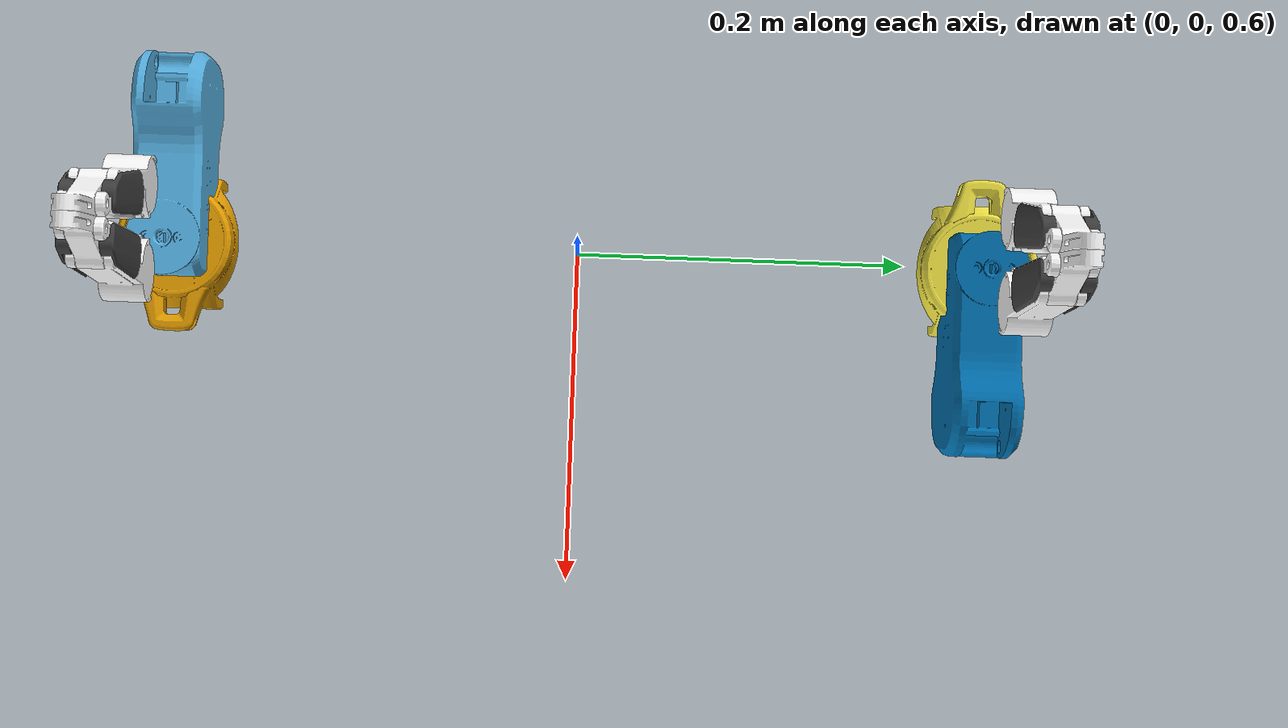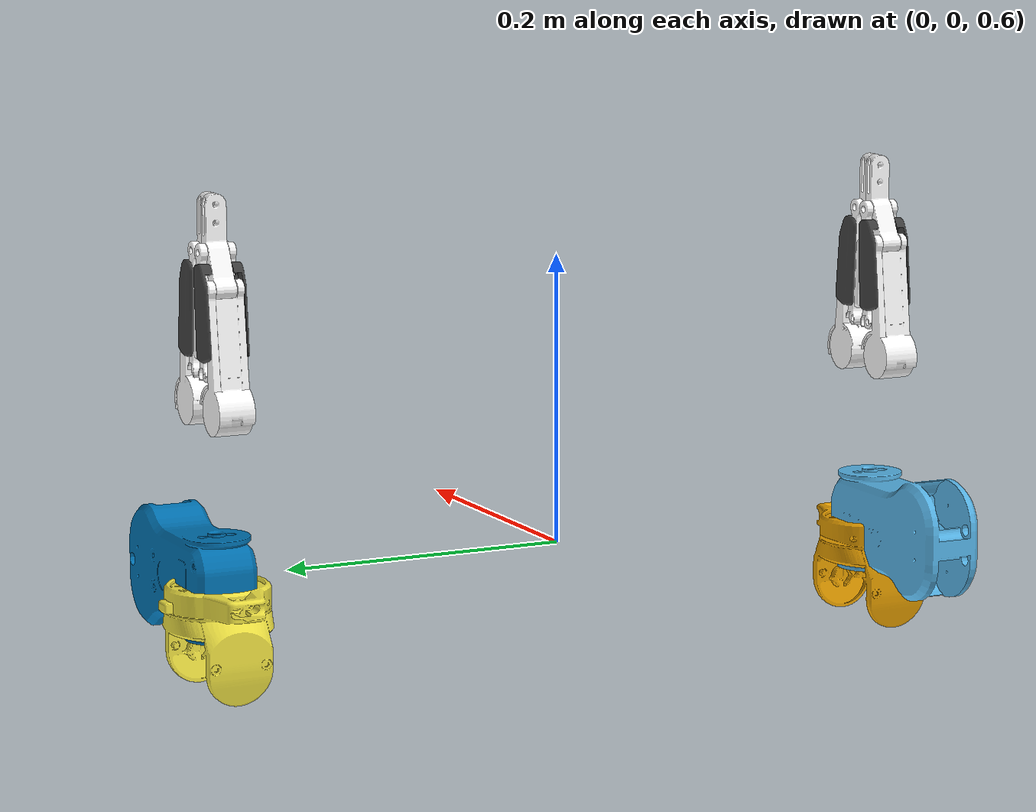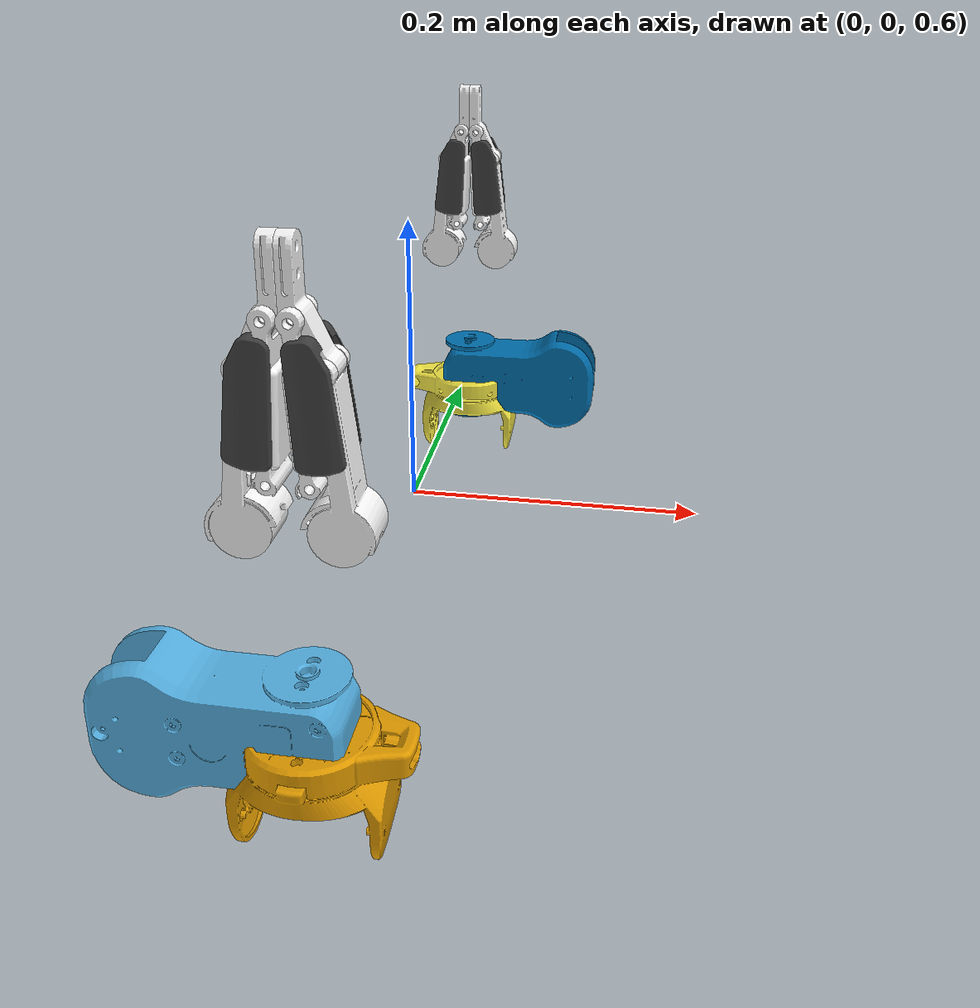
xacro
<?xml version="1.0"?>
<robot name="dual_rg6_realmesh_arm_fixture" xmlns:xacro="http://www.ros.org/wiki/xacro">
  <xacro:arg name="use_standard_fingertips" default="false"/>\n  <xacro:arg name="include_ros2_control" default="false"/>
  <xacro:include filename="$(find onrobot_rg6)/urdf/onrobot_rg6_realmesh_macro.xacro"/>

  <link name="arm_base"/>
  <link name="left_tool0"/>
  <joint name="left_wrist_joint" type="fixed">
    <parent link="arm_base"/><child link="left_tool0"/>
    <origin xyz="0 0.25 0.5" rpy="0 0 0"/>
  </joint>
  <link name="right_tool0"/>
  <joint name="right_wrist_joint" type="fixed">
    <parent link="arm_base"/><child link="right_tool0"/>
    <origin xyz="0 -0.25 0.5" rpy="0 0 0"/>
  </joint>

  <xacro:onrobot_rg6_realmesh parent="left_tool0" prefix="left_gripper_"
                       origin_xyz="0 0 0.08" origin_rpy="0 0 0" include_ros2_control="$(arg include_ros2_control)"/>
  <xacro:onrobot_rg6_realmesh parent="right_tool0" prefix="right_gripper_"
                       origin_xyz="0 0 0.08" origin_rpy="0 0 3.14159265359" include_ros2_control="$(arg include_ros2_control)"/>

  <link name="left_user_finger"/>
  <joint name="left_user_finger_joint" type="fixed">
    <parent link="left_gripper_left_finger_mount"/>
    <child link="left_user_finger"/>
  </joint>
  <link name="right_user_finger"/>
  <joint name="right_user_finger_joint" type="fixed">
    <parent link="right_gripper_right_finger_mount"/>
    <child link="right_user_finger"/>
  </joint>
</robot>

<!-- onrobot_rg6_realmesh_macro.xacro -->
<robot xmlns:xacro="http://www.ros.org/wiki/xacro">

    <!-- ================= Xacro arguments ================= -->

      <xacro:arg name="mesh_path" default="package://onrobot_rg6/meshes"/>
      <xacro:arg name="fingertip_material" default="standard"/>
      <xacro:arg name="use_standard_fingertips" default="true"/>

      <!-- outwards or inwards -->
      <xacro:arg name="fingertip_orientation" default="inwards"/>
      <xacro:arg name="host" default="127.0.0.1"/>
      <xacro:arg name="port" default="502"/>
      <xacro:arg name="transport" default="tcp"/>
      <xacro:arg name="serial_device" default="/dev/ttyUSB0"/>
      <xacro:arg name="baud_rate" default="1000000"/>
      <xacro:arg name="rtu_parity" default="even"/>
      <xacro:arg name="slave_id" default="65"/>
      <xacro:arg name="connect_timeout_ms" default="1000"/>
      <xacro:arg name="read_timeout_ms" default="1000"/>
      <xacro:arg name="write_timeout_ms" default="1000"/>
      <xacro:arg name="backend" default="real"/>
      <xacro:arg name="isaac_joint_commands_topic" default="isaac_joint_commands"/>
      <xacro:arg name="isaac_joint_states_topic" default="isaac_joint_states"/>
      <xacro:arg name="isaac_state_timeout_ms" default="250"/>
      <xacro:arg name="safe_width_min_mm" default="0.0"/>
      <xacro:arg name="safe_width_max_mm" default="160.0"/>
      <xacro:arg name="default_force_n" default="20.0"/>
      <xacro:arg name="realtime_update_rate_hz" default="50"/>

  <xacro:macro name="onrobot_rg6_realmesh" params="parent:='' prefix:='' origin_xyz:='0 0 0' origin_rpy:='0 0 0' backend:='real' host:='127.0.0.1' port:='502' transport:='tcp' serial_device:='/dev/ttyUSB0' baud_rate:='1000000' rtu_parity:='even' slave_id:='65' connect_timeout_ms:='1000' read_timeout_ms:='1000' write_timeout_ms:='1000' safe_width_min_mm:='0.0' safe_width_max_mm:='160.0' default_force_n:='20.0' realtime_update_rate_hz:='50' include_ros2_control:=true">
    <xacro:property name="cad_finger_upper" value="${1.1928 if backend == 'isaac' else asin(151.6 / 160.0) + asin(4.2 / 80.0)}"/>
    <xacro:if value="${parent != ''}">
      <joint name="${prefix}mount_joint" type="fixed"><parent link="${parent}"/><child link="${prefix}base_link"/><origin xyz="${origin_xyz}" rpy="${origin_rpy}"/></joint>
    </xacro:if>
      <!-- ================= Fingertip orientation ================= -->

      <xacro:if value="${'$(arg fingertip_orientation)' == 'inwards'}">
        <xacro:property name="fingertip_rpy_vis" value="${pi / 2} 0 0"/>
        <xacro:property name="fingertip_collision_xyz" value="0 0 0"/>
        <xacro:property name="fingertip_collision_rpy" value="${pi} 0 0"/>
      </xacro:if>

      <xacro:unless value="${'$(arg fingertip_orientation)' == 'inwards'}">
        <xacro:property name="fingertip_rpy_vis" value="${pi / 2} 0 0"/>
        <xacro:property name="fingertip_collision_xyz" value="0 0 -0.0084"/>
        <xacro:property name="fingertip_collision_rpy" value="0 0 0"/>
      </xacro:unless>

      <!-- ================= Fingertip material ================= -->

        <xacro:if value="${'$(arg fingertip_material)' == 'standard'}">
        <xacro:property
          name="fingertip_mesh"
          value="$(arg mesh_path)/fingertip_standard"/>
      </xacro:if>

      <xacro:if value="${'$(arg fingertip_material)' == 'x'}">
        <xacro:property
          name="fingertip_mesh"
          value="$(arg mesh_path)/fingertip_x"/>
      </xacro:if>

      <xacro:if value="${'$(arg fingertip_material)' == '50_standard'}">
        <xacro:property
          name="fingertip_mesh"
          value="$(arg mesh_path)/fingertip_50_standard"/>
      </xacro:if>

      <xacro:if value="${'$(arg fingertip_material)' == '50_x'}">
        <xacro:property
          name="fingertip_mesh"
          value="$(arg mesh_path)/fingertip_50_x"/>
      </xacro:if>

      <xacro:if value="${'$(arg fingertip_material)' == '100_standard'}">
        <xacro:property
          name="fingertip_mesh"
          value="$(arg mesh_path)/fingertip_100_standard"/>
      </xacro:if>

      <xacro:if value="${'$(arg fingertip_material)' == '100_x'}">
        <xacro:property
          name="fingertip_mesh"
          value="$(arg mesh_path)/fingertip_100_x"/>
      </xacro:if>

      <!-- ================= Fingertip inertial values ================= -->

      <!-- ================= Standard and x fingertip inertia ================= -->

      <xacro:if value="${'$(arg fingertip_material)' == 'standard' or '$(arg fingertip_material)' == 'x'}">

        <xacro:property
            name="fingertip_inertial_origin_xyz"
            value="-0.000415245269094811 9.99885104498482E-05 -0.000165694664188377"/>
        <xacro:property name="fingertip_mass" value="0.00794964440363267"/>
        <xacro:property name="fingertip_ixx" value="5.15212191011275E-07"/>
        <xacro:property name="fingertip_ixy" value="-8.74258433074447E-13"/>
        <xacro:property name="fingertip_ixz" value="-1.51311624243258E-08"/>
        <xacro:property name="fingertip_iyy" value="8.83850409371737E-07"/>
        <xacro:property name="fingertip_iyz" value="4.99311599525026E-13"/>
        <xacro:property name="fingertip_izz" value="1.27369503224217E-06"/>

      </xacro:if>

      <!-- ================= 50 mm standard and x extension inertia ================= -->

      <xacro:if value="${'$(arg fingertip_material)' == '50_standard' or '$(arg fingertip_material)' == '50_x'}">

        <xacro:property
            name="fingertip_inertial_origin_xyz"
            value="0.030851 -1.3178E-08 0.00066842"/>
        <xacro:property name="fingertip_mass" value="0.030186"/>
        <xacro:property name="fingertip_ixx" value="1.2853E-06"/>
        <xacro:property name="fingertip_ixy" value="-1.0138E-11"/>
        <xacro:property name="fingertip_ixz" value="7.33E-09"/>
        <xacro:property name="fingertip_iyy" value="1.0583E-05"/>
        <xacro:property name="fingertip_iyz" value="-8.1418E-13"/>
        <xacro:property name="fingertip_izz" value="1.1379E-05"/>

      </xacro:if>

      <!-- ================= 100 mm standard and x extension inertia ================= -->

      <xacro:if value="${'$(arg fingertip_material)' == '100_standard' or '$(arg fingertip_material)' == '100_x'}">

          <xacro:property
            name="fingertip_inertial_origin_xyz"
            value="0.057465 -2.6865E-08 0.0010303"/>
        <xacro:property name="fingertip_mass" value="0.046499"/>
        <xacro:property name="fingertip_ixx" value="1.6626E-06"/>
        <xacro:property name="fingertip_ixy" value="-6.5184E-11"/>
        <xacro:property name="fingertip_ixz" value="9.5224E-08"/>
        <xacro:property name="fingertip_iyy" value="4.7491E-05"/>
        <xacro:property name="fingertip_iyz" value="-4.4294E-12"/>
        <xacro:property name="fingertip_izz" value="4.8472E-05" />

      </xacro:if>

      <!-- ================= Fingertip inertial macro ================= -->

      <xacro:macro name="fingertip_inertial">
        <inertial>
          <origin
            xyz="${fingertip_inertial_origin_xyz}"
            rpy="0 0 0"/>
          <mass value="${fingertip_mass}"/>
          <inertia
            ixx="${fingertip_ixx}"
            ixy="${fingertip_ixy}"
            ixz="${fingertip_ixz}"
            iyy="${fingertip_iyy}"
            iyz="${fingertip_iyz}"
            izz="${fingertip_izz}"/>
        </inertial>
      </xacro:macro>

      <!-- ================= Shared materials ================= -->

      <material name="${prefix}base_grey">
        <color
          rgba="0.752941176470588 0.752941176470588 0.752941176470588 1"/>
      </material>

      <material name="${prefix}body_white">
        <color rgba="1 1 1 1"/>
      </material>

      <material name="${prefix}cover_grey">
        <color
          rgba="0.25 0.25 0.25 1"/>
      </material>

      <!-- ================= Base link ================= -->

      <link name="${prefix}base_link">
        <inertial>
          <origin
            xyz="-0.00121788599047724 -0.000550668033101437 0.0187282967117692"
            rpy="0 0 0"/>
          <mass value="0.204758708246786"/>
          <inertia
            ixx="6.64001336616449E-05"
            ixy="-1.76622602816932E-08"
            ixz="3.54902398565887E-07"
            iyy="6.08703694320358E-05"
            iyz="-1.99495160489733E-07"
            izz="0.000104892887141359"/>
        </inertial>

        <visual>
          <origin
            xyz="0 0 0.01384"
            rpy="${pi} 0 0"/>
          <geometry>
            <mesh filename="$(arg mesh_path)/base_link.dae"/>
          </geometry>
        </visual>

        <collision>
          <origin xyz="0 0 0" rpy="0 0 0"/>
          <geometry>
            <mesh filename="$(arg mesh_path)/base_link.STL"/>
          </geometry>
        </collision>
      </link>

      <!-- ================= Body link ================= -->

      <link name="${prefix}body_link">
        <inertial>
          <origin
            xyz="0.0434153623779559 5.3786957841064E-05 -5.29481917390598E-05"
            rpy="0 0 0"/>
          <mass value="0.60552714704761"/>
          <inertia
            ixx="0.000247806198136595"
            ixy="-3.09068060110115E-06"
            ixz="6.82132501556445E-07"
            iyy="0.00101875038940284"
            iyz="5.58944896976989E-08"
            izz="0.000814988330532685"/>
        </inertial>

        <visual>
          <origin
            xyz="-0.0365 0 0"
            rpy="${pi} ${pi/2} 0"/>
          <geometry>
            <mesh filename="$(arg mesh_path)/body_link.dae"/>
          </geometry>
        </visual>

        <collision>
          <origin
            xyz="0 0 0"
            rpy="${pi} 0 0"/>
          <geometry>
            <mesh filename="$(arg mesh_path)/body_link.STL"/>
          </geometry>
        </collision>
      </link>

      <joint name="${prefix}body_joint" type="fixed">
        <origin
          xyz="0 0 0.0503000000000003"
          rpy="0 -1.5707963267949 0"/>
        <parent link="${prefix}base_link"/>
        <child link="${prefix}body_link"/>
      </joint>

      <!-- ================= Right outer proximal finger ================= -->

      <link name="${prefix}right_outer_proximal_finger_link">
        <inertial>
          <origin
            xyz="0.0177338821259218 -8.32951273863174E-05 -6.63580284241195E-08"
            rpy="0 0 0"/>
          <mass value="0.0848117981062213"/>
          <inertia
            ixx="8.71821520908564E-06"
            ixy="1.34526866604961E-06"
            ixz="3.84850856626284E-11"
            iyy="5.52144884000519E-05"
            iyz="-4.03714649653644E-11"
            izz="5.4966795562473E-05"/>
        </inertial>

        <visual>
          <origin xyz="0 0 0" rpy="0 0 0"/>
          <geometry>
            <mesh
              filename="$(arg mesh_path)/outer_proximal_finger_link.STL"/>
          </geometry>
          <material name="${prefix}body_white"/>
        </visual>

        <collision>
          <origin xyz="0 0 0" rpy="0 0 0"/>
          <geometry>
            <mesh
              filename="$(arg mesh_path)/outer_proximal_finger_link.STL"/>
          </geometry>
        </collision>
      </link>

      <joint name="${prefix}finger_joint" type="revolute">
        <origin
          xyz="0.0849999999999914 0 -0.0238499999999955"
          rpy="-1.5707963267949 0 0"/>
        <parent link="${prefix}body_link"/>
        <child link="${prefix}right_outer_proximal_finger_link"/>
        <axis xyz="0 0 1"/>
        <limit
          lower="0"
          upper="${cad_finger_upper}"
          effort="16.17"
          velocity="1.34"/>
      </joint>

      <!-- ================= Right finger base ================= -->

      <link name="${prefix}right_finger_base_link">
        <inertial>
          <origin
            xyz="0.0245303578322192 -0.0101016281440233 -9.99975309271899E-05"
            rpy="0 0 0"/>
          <mass value="0.0219132001177097"/>
          <inertia
            ixx="1.29440989381929E-06"
            ixy="2.07037163398328E-06"
            ixz="-4.84504967490224E-13"
            iyy="7.54766158511745E-06"
            iyz="4.36721422019022E-13"
            izz="8.16537121487209E-06"/>
        </inertial>

        <visual>
          <origin xyz="0 0 0" rpy="0 0 0"/>
          <geometry>
            <mesh filename="$(arg mesh_path)/finger_base_link.STL"/>
          </geometry>
          <material name="${prefix}body_white"/>
        </visual>

        <collision>
          <origin xyz="0 0 0" rpy="0 0 0"/>
          <geometry>
            <mesh filename="$(arg mesh_path)/finger_base_link.STL"/>
          </geometry>
        </collision>
      </link>

      <joint name="${prefix}right_finger_base_link" type="continuous">
        <origin
          xyz="0.0798896739261193 -0.00419999999758666 0"
          rpy="0 0 0"/>
        <parent link="${prefix}right_outer_proximal_finger_link"/>
        <child link="${prefix}right_finger_base_link"/>
        <axis xyz="0 0 1"/>
        <mimic
          joint="${prefix}finger_joint"
          multiplier="-1"
          offset="0"/>
      </joint>

      <!-- ================= Right finger cover ================= -->

      <link name="${prefix}right_finger_cover_link">
        <inertial>
          <origin
            xyz="-0.0272052614455263 0.00166203526226322 -9.99202916528356E-05"
            rpy="0 0 0"/>
          <mass value="0.00654133884855527"/>
          <inertia
            ixx="2.20130240213327E-07"
            ixy="1.57708709316053E-07"
            ixz="-7.28649779330084E-13"
            iyy="2.11303877150424E-06"
            iyz="-1.81532285162983E-13"
            izz="2.307595228608E-06"/>
        </inertial>

        <visual>
          <origin xyz="0 0 0" rpy="0 0 0"/>
          <geometry>
            <mesh filename="$(arg mesh_path)/finger_cover_link.STL"/>
          </geometry>
          <material name="${prefix}cover_grey"/>
        </visual>

        <collision>
          <origin xyz="0 0 0" rpy="0 0 0"/>
          <geometry>
            <mesh filename="$(arg mesh_path)/finger_cover_link.STL"/>
          </geometry>
        </collision>
      </link>

      <joint name="${prefix}right_finger_cover_joint" type="continuous">
        <origin
          xyz="0.01155 -0.00664999999999995 0"
          rpy="0 0 0"/>
        <parent link="${prefix}right_finger_base_link"/>
        <child link="${prefix}right_finger_cover_link"/>
        <axis xyz="0 0 1"/>
        <mimic
          joint="${prefix}finger_joint"
          multiplier="1"
          offset="0"/>
      </joint>

      <!-- ================= Right fingertip ================= -->

      <xacro:if value="$(arg use_standard_fingertips)">
      <link name="${prefix}right_finger_tip_link">
        <xacro:fingertip_inertial/>
        <visual>
          <origin
            xyz="${fingertip_collision_xyz}"
            rpy="${fingertip_collision_rpy}"/>
          <geometry>
                <mesh filename="${fingertip_mesh}_link.dae"/>
          </geometry>
        </visual>

        <collision>
          <origin
            xyz="${fingertip_collision_xyz}"
            rpy="${fingertip_collision_rpy}"/>
          <geometry>
                <mesh filename="${fingertip_mesh}_link.STL"/>
          </geometry>
        </collision>
      </link>
      </xacro:if>

      <link name="${prefix}right_finger_mount"/>

      <joint name="${prefix}right_finger_mount_joint" type="fixed">
        <origin
          xyz="0.0479 -0.0196 0"
          rpy="0 0 0"/>
        <parent link="${prefix}right_finger_base_link"/>
        <child link="${prefix}right_finger_mount"/>
      </joint>

      <xacro:if value="$(arg use_standard_fingertips)">
      <joint name="${prefix}right_finger_tip_joint" type="fixed">
        <origin xyz="0 0 0" rpy="${fingertip_rpy_vis}"/>
        <parent link="${prefix}right_finger_mount"/>
        <child link="${prefix}right_finger_tip_link"/>
      </joint>
      </xacro:if>

      <!-- ================= Right inner proximal finger ================= -->

      <link name="${prefix}right_inner_proximal_finger_link">
        <inertial>
          <origin
            xyz="0.0388879789845956 -0.00254047815772547 -0.000105026480050108"
            rpy="0 0 0"/>
          <mass value="0.0209379492759949"/>
          <inertia
            ixx="1.66325652747798E-06"
            ixy="8.5496814274727E-07"
            ixz="-2.4758818329976E-12"
            iyy="1.76493383239348E-05"
            iyz="2.44875952455023E-13"
            izz="1.63390526801637E-05"/>
        </inertial>

        <visual>
          <origin xyz="0 0 0" rpy="0 0 0"/>
          <geometry>
            <mesh
              filename="$(arg mesh_path)/inner_proximal_finger_link.STL"/>
          </geometry>
          <material name="${prefix}body_white"/>
        </visual>

        <collision>
          <origin xyz="0 0 0" rpy="0 0 0"/>
          <geometry>
            <mesh
              filename="$(arg mesh_path)/inner_proximal_finger_link.STL"/>
          </geometry>
        </collision>
      </link>

      <joint name="${prefix}right_inner_proximal_finger_joint" type="continuous">
        <origin
          xyz="0.1081 0 -0.0105499999999994"
          rpy="-1.5707963267949 0 0"/>
        <parent link="${prefix}body_link"/>
        <child link="${prefix}right_inner_proximal_finger_link"/>
        <axis xyz="0 0 1"/>
        <mimic
          joint="${prefix}finger_joint"
          multiplier="1"
          offset="0"/>
      </joint>

      <!-- ================= Left outer proximal finger ================= -->

      <link name="${prefix}left_outer_proximal_finger_link">
        <inertial>
          <origin
            xyz="0.0177338821257871 -8.32951273467969E-05 -6.63580395243983E-08"
            rpy="0 0 0"/>
          <mass value="0.0848117981059909"/>
          <inertia
            ixx="8.71821520907421E-06"
            ixy="1.34526866599051E-06"
            ixz="3.84851186671045E-11"
            iyy="5.52144883997528E-05"
            iyz="-4.03714700288834E-11"
            izz="5.496679556217E-05"/>
        </inertial>

        <visual>
          <origin xyz="0 0 0" rpy="0 0 0"/>
          <geometry>
            <mesh
              filename="$(arg mesh_path)/outer_proximal_finger_link.STL"/>
          </geometry>
          <material name="${prefix}body_white"/>
        </visual>

        <collision>
          <origin xyz="0 0 0" rpy="0 0 0"/>
          <geometry>
            <mesh
              filename="$(arg mesh_path)/outer_proximal_finger_link.STL"/>
          </geometry>
        </collision>
      </link>

      <joint name="${prefix}left_outer_proximal_finger_joint" type="revolute">
        <origin
          xyz="0.0850000000000254 0 0.0237500000000128"
          rpy="1.5707963267949 0 0"/>
        <parent link="${prefix}body_link"/>
        <child link="${prefix}left_outer_proximal_finger_link"/>
        <axis xyz="0 0 1"/>
        <limit
          lower="0"
          upper="${cad_finger_upper}"
          effort="16.17"
          velocity="1.34"/>

        <mimic
          joint="${prefix}finger_joint"
          multiplier="1"
          offset="0"/>
      </joint>

      <!-- ================= Left finger base ================= -->

      <link name="${prefix}left_finger_base_link">
        <inertial>
          <origin
            xyz="0.0245303578322203 -0.0101016281440251 2.46907248070556E-09"
            rpy="0 0 0"/>
          <mass value="0.0219132001177097"/>
          <inertia
            ixx="1.29440989381929E-06"
            ixy="2.07037163398328E-06"
            ixz="-4.84504982625829E-13"
            iyy="7.54766158511746E-06"
            iyz="4.36721426440262E-13"
            izz="8.16537121487209E-06"/>
        </inertial>

        <visual>
          <origin xyz="0 0 0" rpy="0 0 0"/>
          <geometry>
            <mesh filename="$(arg mesh_path)/finger_base_link.STL"/>
          </geometry>
          <material name="${prefix}body_white"/>
        </visual>

        <collision>
          <origin xyz="0 0 0" rpy="0 0 0"/>
          <geometry>
            <mesh filename="$(arg mesh_path)/finger_base_link.STL"/>
          </geometry>
        </collision>
      </link>

      <joint name="${prefix}left_finger_base_joint" type="continuous">
        <origin
          xyz="0.0798896739260845 -0.00419999999760181 0"
          rpy="0 0 0"/>
        <parent link="${prefix}left_outer_proximal_finger_link"/>
        <child link="${prefix}left_finger_base_link"/>
        <axis xyz="0 0 1"/>
        <mimic
          joint="${prefix}finger_joint"
          multiplier="-1"
          offset="0"/>
      </joint>

      <!-- ================= Left finger cover ================= -->

      <link name="${prefix}left_finger_cover_link">
        <inertial>
          <origin
            xyz="-0.0272052614455309 0.00166203526231937 7.9708347079959E-08"
            rpy="0 0 0"/>
          <mass value="0.0065413388485553"/>
          <inertia
            ixx="2.20130241120385E-07"
            ixy="1.5770870931553E-07"
            ixz="-7.28647952226547E-13"
            iyy="2.11303877241158E-06"
            iyz="-1.81531566232666E-13"
            izz="2.3075952286081E-06"/>
        </inertial>

        <visual>
          <origin xyz="0 0 0" rpy="0 0 0"/>

          <geometry>
            <mesh filename="$(arg mesh_path)/finger_cover_link.STL"/>
          </geometry>

          <material name="${prefix}cover_grey"/>
        </visual>

        <collision>
          <origin xyz="0 0 0" rpy="0 0 0"/>

          <geometry>
            <mesh filename="$(arg mesh_path)/finger_cover_link.STL"/>
          </geometry>
        </collision>
      </link>

      <joint name="${prefix}left_finger_cover_joint" type="continuous">
        <origin
          xyz="0.01155 -0.00665 0"
          rpy="0 0 0"/>

        <parent link="${prefix}left_finger_base_link"/>
        <child link="${prefix}left_finger_cover_link"/>

        <axis xyz="0 0 1"/>
        <mimic
          joint="${prefix}finger_joint"
          multiplier="1"
          offset="0"/>
      </joint>

      <!-- ================= Left fingertip ================= -->

      <xacro:if value="$(arg use_standard_fingertips)">
      <link name="${prefix}left_finger_tip_link">
        <xacro:fingertip_inertial/>

        <visual>
          <origin
            xyz="${fingertip_collision_xyz}"
            rpy="${fingertip_collision_rpy}"/>
          <geometry>
                <mesh filename="${fingertip_mesh}_link.dae"/>
          </geometry>
        </visual>

        <collision>
          <origin
            xyz="${fingertip_collision_xyz}"
            rpy="${fingertip_collision_rpy}"/>
          <geometry>
                <mesh filename="${fingertip_mesh}_link.STL"/>
          </geometry>
        </collision>
      </link>
      </xacro:if>

      <link name="${prefix}left_finger_mount"/>

      <joint name="${prefix}left_finger_mount_joint" type="fixed">
        <origin
          xyz="0.0479 -0.0196 0"
          rpy="0 0 0"/>
        <parent link="${prefix}left_finger_base_link"/>
        <child link="${prefix}left_finger_mount"/>
      </joint>

      <xacro:if value="$(arg use_standard_fingertips)">
      <joint name="${prefix}left_finger_tip_joint" type="fixed">
        <origin xyz="0 0 0" rpy="${fingertip_rpy_vis}"/>
        <parent link="${prefix}left_finger_mount"/>
        <child link="${prefix}left_finger_tip_link"/>
      </joint>
      </xacro:if>

      <!-- ================= Left inner proximal finger ================= -->

      <link name="${prefix}left_inner_proximal_finger_link">
        <inertial>
          <origin
            xyz="0.0388879789845877 -0.00254047815756097 0.000105017186589876"
            rpy="0 0 0"/>
          <mass value="0.0209379492759949"/>
          <inertia
            ixx="1.66325652747629E-06"
            ixy="8.54968142731476E-07"
            ixz="-2.47588181911418E-12"
            iyy="1.76493383239365E-05"
            iyz="2.44875941899567E-13"
            izz="1.63390526801636E-05"/>
        </inertial>

        <visual>
          <origin xyz="0 0 0" rpy="0 0 0"/>
          <geometry>
            <mesh filename="$(arg mesh_path)/inner_proximal_finger_link.STL"/>
          </geometry>
          <material name="${prefix}body_white"/>
        </visual>

        <collision>
          <origin xyz="0 0 0" rpy="0 0 0"/>
          <geometry>
            <mesh filename="$(arg mesh_path)/inner_proximal_finger_link.STL"/>
          </geometry>
        </collision>
      </link>

      <joint name="${prefix}left_inner_proximal_finger_joint" type="continuous">
        <origin
          xyz="0.1081 0 0.0104500000000006"
          rpy="1.5707963267949 0 0"/>
        <parent link="${prefix}body_link"/>
        <child link="${prefix}left_inner_proximal_finger_link"/>
        <axis xyz="0 0 1"/>
        <mimic
          joint="${prefix}finger_joint"
          multiplier="1"
          offset="0"/>
      </joint>

      <!-- ================= Fingertip friction ================= -->

      <gazebo reference="${prefix}left_finger_tip_link">
        <mu1>0.4</mu1>
        <mu2>0.4</mu2>
      </gazebo>

      <gazebo reference="${prefix}right_finger_tip_link">
        <mu1>0.4</mu1>
        <mu2>0.4</mu2>
      </gazebo>

      <!-- Semantic aperture control joint; visual finger-angle calibration remains
           a separate requirement and is not silently approximated here. -->
      <link name="${prefix}grip_stroke_control_link"/>
      <joint name="${prefix}grip_stroke" type="prismatic">
        <parent link="${prefix}base_link"/><child link="${prefix}grip_stroke_control_link"/>
        <axis xyz="1 0 0"/><limit lower="0" upper="0.160" effort="120" velocity="1"/>
      </joint>

    <xacro:if value="${include_ros2_control}">
        <ros2_control name="${prefix}OnRobotRG6System" type="system">
            <hardware>
              <xacro:if value="${backend == 'real'}"><plugin>onrobot_gripper_hardware/OnRobotRgSystem</plugin></xacro:if>
              <xacro:if value="${backend == 'fake'}"><plugin>onrobot_gripper_hardware/OnRobotParallelGripperFakeSystem</plugin></xacro:if>
              <xacro:if value="${backend == 'isaac'}"><plugin>onrobot_gripper_hardware/OnRobotIsaacSystem</plugin></xacro:if>
              <param name="model">rg6</param>
              <param name="transport">${transport}</param>
              <param name="host">${host}</param>
              <param name="port">${port}</param>
              <param name="serial_device">${serial_device}</param>
              <param name="baud_rate">${baud_rate}</param>
              <param name="rtu_parity">${rtu_parity}</param>
              <param name="slave_id">${slave_id}</param>
              <param name="connect_timeout_ms">${connect_timeout_ms}</param>
              <param name="read_timeout_ms">${read_timeout_ms}</param>
              <param name="write_timeout_ms">${write_timeout_ms}</param>
              <param name="safe_width_min_mm">${safe_width_min_mm}</param><param name="safe_width_max_mm">${safe_width_max_mm}</param>
              <param name="default_force_n">${default_force_n}</param>
              <param name="fake_task_min_m">${float(str(safe_width_min_mm)) / 1000.0}</param>
              <param name="fake_task_max_m">${float(str(safe_width_max_mm)) / 1000.0}</param>
              <param name="visual_finger_joint_upper_rad">${cad_finger_upper}</param>
              <param name="isaac_joint">finger_joint</param>
              <param name="isaac_joint_commands_topic">$(arg isaac_joint_commands_topic)</param>
              <param name="isaac_joint_states_topic">$(arg isaac_joint_states_topic)</param>
              <param name="isaac_state_timeout_ms">$(arg isaac_state_timeout_ms)</param>
              <param name="task_min_m">${float(str(safe_width_min_mm)) / 1000.0}</param>
              <param name="task_max_m">${float(str(safe_width_max_mm)) / 1000.0}</param>
              <param name="physical_min_m">0.0</param>
              <param name="physical_max_m">1.1928</param>
              <param name="raw_linear_min_mm">0.0</param>
              <param name="raw_linear_max_mm">1192.8</param>
              <param name="realtime_update_rate_hz">${realtime_update_rate_hz}</param>
              <param name="realtime_command_timeout_ms">100</param>
              <param name="realtime_maximum_consecutive_failures">3</param>
            </hardware>
            <joint name="${prefix}grip_stroke">
              <command_interface name="position"/><command_interface name="effort"/>
              <command_interface name="realtime_mode"/>
              <command_interface name="realtime_task_position"/>
              <command_interface name="realtime_mechanism_angular_velocity"/>
              <command_interface name="realtime_force"/>
              <command_interface name="realtime_command_sequence"/>
              <command_interface name="fault_recovery_command_sequence"/>
              <command_interface name="stop_command_sequence"/>
              <command_interface name="conventional_command_sequence"/>
              <state_interface name="position"/><state_interface name="velocity"/>
              <state_interface name="effort"/>
              <state_interface name="task_position_valid"/>
              <state_interface name="force_valid"/><state_interface name="busy"/>
              <state_interface name="grip_detected"/><state_interface name="active_mode"/>
              <state_interface name="safety_status_valid"/>
              <state_interface name="safety_1_pushed"/><state_interface name="safety_1_triggered"/>
              <state_interface name="safety_2_pushed"/><state_interface name="safety_2_triggered"/>
              <state_interface name="safety_dc_error"/>
              <state_interface name="connection_state"/>
              <state_interface name="faulted"/><state_interface name="fault_code"/>
              <state_interface name="firmware_qualification"/>
              <state_interface name="sample_sequence"/><state_interface name="sample_age"/>
              <state_interface name="requested_command_sequence"/>
              <state_interface name="applied_command_sequence"/>
              <state_interface name="successful_cycles"/>
              <state_interface name="failed_cycles"/><state_interface name="missed_deadlines"/>
              <state_interface name="watchdog_stops"/><state_interface name="reconnects"/><state_interface name="last_cycle_duration"/>
              <state_interface name="minimum_task_aperture"/><state_interface name="maximum_task_aperture"/>
              <state_interface name="diagnostic_status_valid"/>
              <state_interface name="diagnostic_identity_valid" />
              <state_interface name="diagnostic_product_code" />
              <state_interface name="diagnostic_firmware_major" />
              <state_interface name="diagnostic_firmware_minor" />
              <state_interface name="diagnostic_firmware_build" />
              <state_interface name="diagnostic_board_revisions_valid" />
              <state_interface name="diagnostic_product_revision" />
              <state_interface name="diagnostic_hardware_revision" />
              <state_interface name="diagnostic_pcb_revision" />
              <state_interface name="diagnostic_firmware_crc_valid" />
              <state_interface name="diagnostic_firmware_crc" />
              <state_interface name="diagnostic_firmware_source_valid" />
              <state_interface name="diagnostic_firmware_git_word_0" />
              <state_interface name="diagnostic_firmware_git_word_1" />
              <state_interface name="diagnostic_firmware_git_word_2" />
              <state_interface name="diagnostic_firmware_git_word_3" />
              <state_interface name="diagnostic_firmware_git_word_4" />
              <state_interface name="diagnostic_raw_status"/>
              <state_interface name="diagnostic_busy"/>
              <state_interface name="diagnostic_grip_detected"/>
              <state_interface name="diagnostic_sample_sequence"/>
              <state_interface name="diagnostic_age"/>
              <state_interface name="diagnostic_command_force"/>
              <state_interface name="diagnostic_command_force_valid"/>
              <state_interface name="diagnostic_measured_force"/>
              <state_interface name="diagnostic_measured_force_valid"/>
              <state_interface name="diagnostic_force_provenance"/>
              <state_interface name="diagnostic_motor_voltage"/>
              <state_interface name="diagnostic_motor_current"/>
              <state_interface name="diagnostic_temperature"/>
              <state_interface name="diagnostic_realtime_linear_velocity"/>
              <state_interface name="diagnostic_realtime_angular_velocity"/>
              <state_interface name="diagnostic_realtime_force"/>
              <state_interface name="diagnostic_supply_power"/>
              <state_interface name="diagnostic_maximum_force"/>
              <state_interface name="diagnostic_maximum_realtime_force"/>
              <state_interface name="diagnostic_statistics_valid"/>
              <state_interface name="diagnostic_conventional_grip_on_time"/>
              <state_interface name="diagnostic_power_cycles"/>
              <state_interface name="diagnostic_conventional_grip_cycles"/>
              <state_interface name="diagnostic_grip_detected_count"/>
              <state_interface name="diagnostic_realtime_grip_on_time"/>
              <state_interface name="diagnostic_rg_fingertip_offset_mm"/>
              <state_interface name="diagnostic_rg_depth_acceleration_mm_s2"/>
              <state_interface name="diagnostic_rg_depth_speed_mm_s"/>
              <state_interface name="diagnostic_rg_actual_depth_mm"/>
              <state_interface name="diagnostic_rg_actual_relative_depth_mm"/>
              <state_interface name="diagnostic_rg_mechanism_angle_rad"/>
              <state_interface name="diagnostic_rg_legacy_angular_velocity_rad_s"/>
              <state_interface name="diagnostic_rg_actual_width_mm"/>
              <state_interface name="diagnostic_rg_voltage_5v_v"/>
              <state_interface name="diagnostic_rg_safety_24v_v"/>
              <state_interface name="diagnostic_rg_plug_24v_v"/>
              <state_interface name="diagnostic_rg_width_with_fingertip_mm"/>
              <state_interface name="diagnostic_rg_error_code"/>
            </joint>
            <joint name="${prefix}finger_joint">
              <state_interface name="position"/><state_interface name="velocity"/>
              <state_interface name="measured_angular_position"/>
              <state_interface name="measured_angular_velocity"/>
              <state_interface name="position_valid"/><state_interface name="velocity_valid"/>
            </joint>
          </ros2_control>
    </xacro:if>
  </xacro:macro>
</robot>
